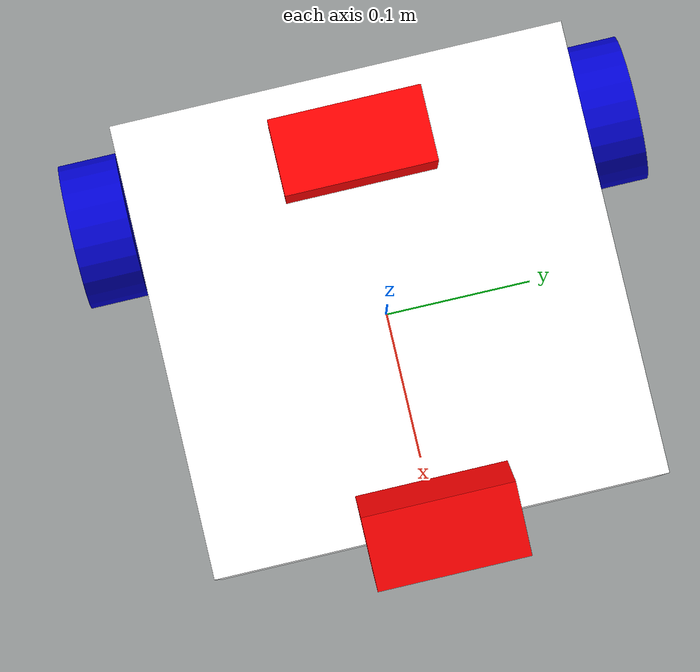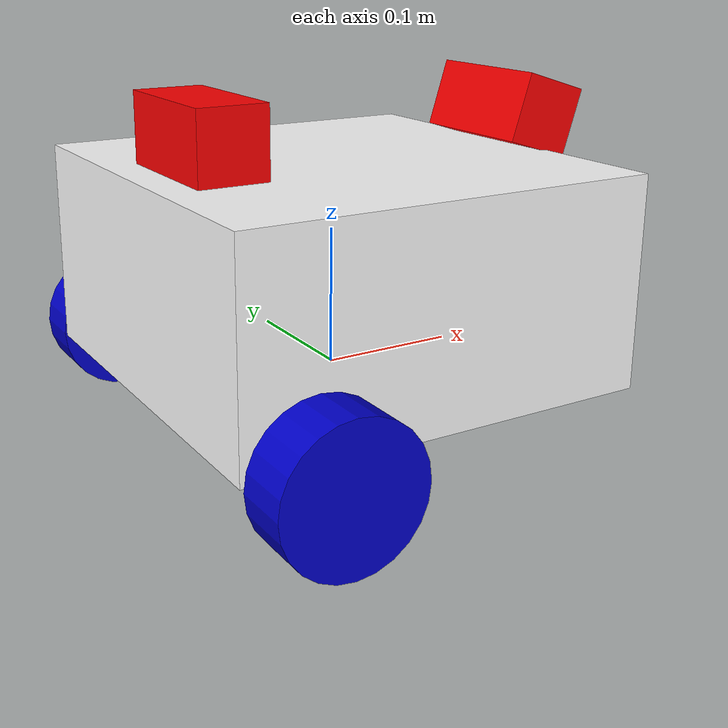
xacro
<?xml version="1.0"?>
<robot name="simple_diff_drive" xmlns:xacro="http://ros.org/wiki/xacro">

  <material name="blue">
    <color rgba="0 0 0.8 1"/>
  </material>
  <material name="black">
    <color rgba="0 0 0 1"/>
  </material>
  <material name="white">
    <color rgba="1 1 1 1"/>
  </material>

  <link name="base_link">
  </link>

  <joint name="chassis_joint" type="fixed">
    <parent link="base_link"/>
    <child link="chassis"/>
    <origin xyz="-0.1 0 0"/>
  </joint>

  <link name="chassis">
    <visual>
      <origin xyz="0.1 0 0.075"/>
      <geometry>
        <box size="0.3 0.3 0.15"/>
      </geometry>
      <material name="white"/>
    </visual>
    <collision>
      <origin xyz="0.1 0 0.075"/>
      <geometry>
        <box size="0.3 0.3 0.15"/>
      </geometry>
    </collision>
    <inertial>
      <origin xyz="0.1 0 0.075"/>
      <mass value="5.0"/>
      <inertia ixx="0.0046875" ixy="0.0" ixz="0.0" iyy="0.0046875" iyz="0.0" izz="0.0075"/>
    </inertial>
  </link>

  <joint name="left_wheel_joint" type="continuous">
    <parent link="base_link"/>
    <child link="left_wheel"/>
    <origin xyz="-0.1 0.175 0" rpy="-1.5708 0 0"/>
    <axis xyz="0 0 1"/>
  </joint>

  <link name="left_wheel">
    <visual>
      <geometry>
        <cylinder radius="0.05" length="0.04"/>
      </geometry>
      <material name="blue"/>
    </visual>
    <collision>
      <geometry>
        <cylinder radius="0.05" length="0.04"/>
      </geometry>
    </collision>
    <inertial>
      <mass value="1.0"/>
      <inertia ixx="0.00007583" ixy="0.0" ixz="0.0" iyy="0.00007583" iyz="0.0" izz="0.000125"/>
    </inertial>
  </link>

  <joint name="right_wheel_joint" type="continuous">
    <parent link="base_link"/>
    <child link="right_wheel"/>
    <origin xyz="-0.1 -0.175 0" rpy="-1.5708 0 0"/>
    <axis xyz="0 0 1"/>
  </joint>

  <link name="right_wheel">
    <visual>
      <geometry>
        <cylinder radius="0.05" length="0.04"/>
      </geometry>
      <material name="blue"/>
    </visual>
    <collision>
      <geometry>
        <cylinder radius="0.05" length="0.04"/>
      </geometry>
    </collision>
    <inertial>
      <mass value="1.0"/>
      <inertia ixx="0.00007583" ixy="0.0" ixz="0.0" iyy="0.00007583" iyz="0.0" izz="0.000125"/>
    </inertial>
  </link>

  <joint name="caster_joint" type="fixed">
    <parent link="chassis"/>
    <child link="caster_wheel"/>
    <origin xyz="0.2 0 0"/>
  </joint>

  <link name="caster_wheel">
    <visual>
      <geometry>
        <sphere radius="0.05"/>
      </geometry>
      <material name="black"/>
    </visual>
    <collision>
      <geometry>
        <sphere radius="0.05"/>
      </geometry>
    </collision>
    <inertial>
      <mass value="0.5"/>
      <inertia ixx="0.0001" ixy="0.0" ixz="0.0" iyy="0.0001" iyz="0.0" izz="0.0001"/>
    </inertial>
  </link>
    <joint name="camera_joint" type="fixed">
    	<parent link="chassis"/>
    	<child link="camera_link"/>
    	<origin xyz="0.25 0 0.175" rpy="0 0.3 0"/>
  	</joint>

  	<link name="camera_link">
    	<visual>
      		<geometry>
        		<box size="0.05 0.1 0.05"/>
      		</geometry>
      		<material name="red">
        		<color rgba="1 0 0 1"/>
      		</material>
    	</visual>
    	<collision>
      		<geometry>
        		<box size="0.05 0.1 0.05"/>
      		</geometry>
    	</collision>
    	<inertial>
      		<mass value="0.0001"/>
      		<inertia ixx="0.0001" ixy="0" ixz="0" iyy="0.0001" iyz="0" izz="0.0001"/>
		</inertial>
  	</link>

  	<joint name="camera_optical_joint" type="fixed">
    	<parent link="camera_link"/>
    	<child link="camera_link_optical"/>
    	<origin xyz="0 0 0" rpy="-1.5708 0 -1.5708"/>
  	</joint>
  	<link name="camera_link_optical"></link>

  	<joint name="camera_counter_joint" type="fixed">
    	<parent link="chassis"/>
    	<child link="camera_counter_link"/>
    	<origin xyz="0.0 0 0.175" rpy="0 0.0 0"/>
  	</joint>

  	<link name="camera_counter_link">
    	<visual>
      		<geometry>
        		<box size="0.05 0.1 0.05"/>
      		</geometry>
      		<material name="red">
        		<color rgba="1 0 0 1"/>
      		</material>
    	</visual>
    	<collision>
      		<geometry>
        		<box size="0.05 0.1 0.05"/>
      		</geometry>
    	</collision>
    	<inertial>
      		<mass value="5.0"/>
      		<inertia ixx="0.0001" ixy="0" ixz="0" iyy="0.0001" iyz="0" izz="0.0001"/>
		</inertial>
  	</link>

	<gazebo reference="camera_link">
		<sensor name="depth_camera" type="depth">
      		<update_rate>10</update_rate>
      		<topic>depth_camera</topic>
      		<camera>
        		<horizontal_fov>1.05</horizontal_fov>
				<optical_frame_id>camera_link</optical_frame_id>
        		<image>
          			<width>640</width>
          			<height>480</height>
          			<format>R8G8B8</format>
        		</image>
        		<clip>
          			<near>0.1</near>
          			<far>10.0</far>
        		</clip>
      		</camera>
      		<always_on>1</always_on>
      		<visualize>true</visualize>
    	</sensor>
	</gazebo>

  <gazebo>
    <plugin
      filename="gz-sim-diff-drive-system"
      name="gz::sim::systems::DiffDrive"
    >
      <left_joint>left_wheel_joint</left_joint>
      <right_joint>right_wheel_joint</right_joint>
      <wheel_separation>0.35</wheel_separation>
      <wheel_radius>0.05</wheel_radius>
      <topic>cmd_vel</topic>
    </plugin>
    <plugin
      filename="gz-sim-joint-state-publisher-system"
      name="gz::sim::systems::JointStatePublisher"
    >
      <topic>joint_states</topic>
    </plugin>
    <plugin
      filename="gz-sim-odometry-publisher-system"
      name="gz::sim::systems::OdometryPublisher"
    >
      <odom_publish_frequency>60</odom_publish_frequency>
      <odom_topic>odom</odom_topic>
      <odom_frame>odom</odom_frame>
      <robot_base_frame>base_link</robot_base_frame>
      <tf_topic>tf</tf_topic>
    </plugin>
  </gazebo>
</robot>
